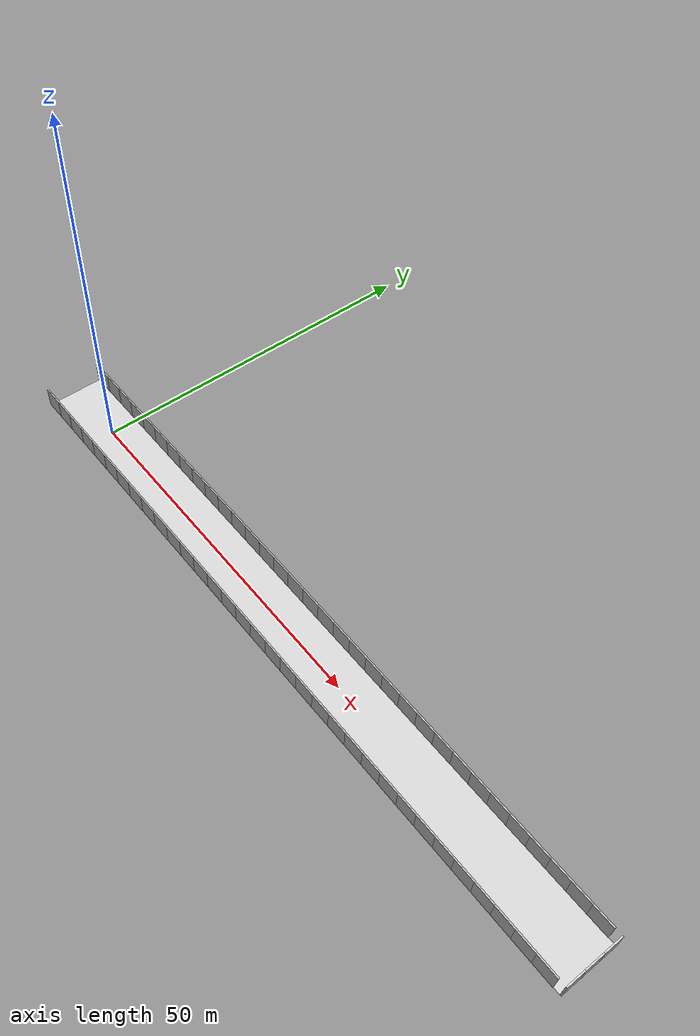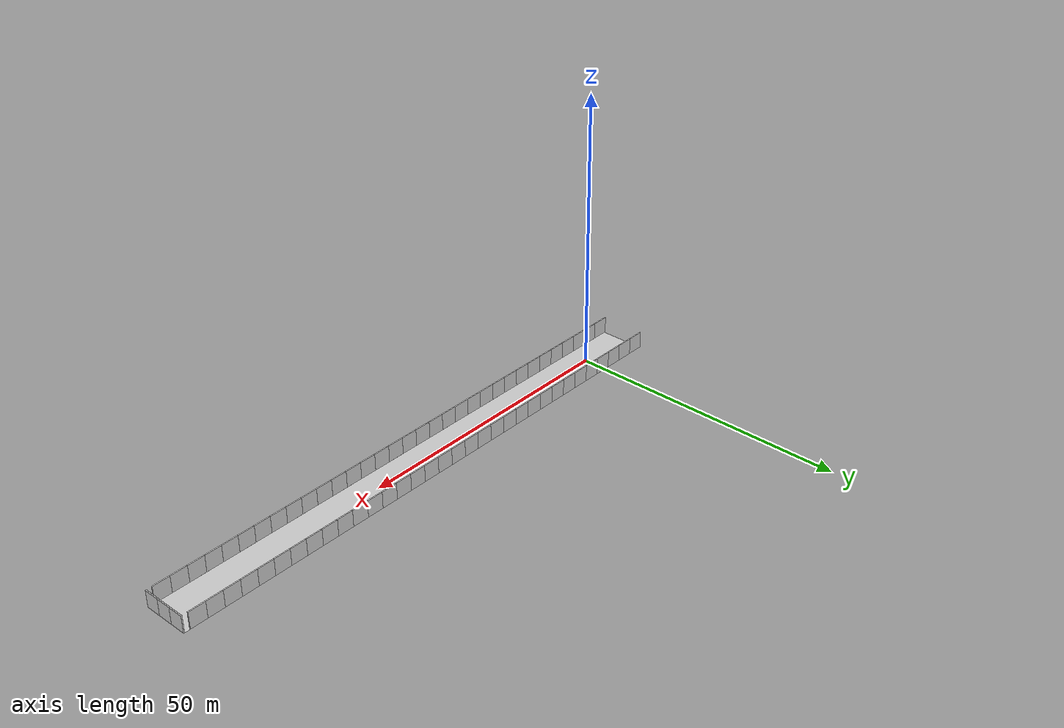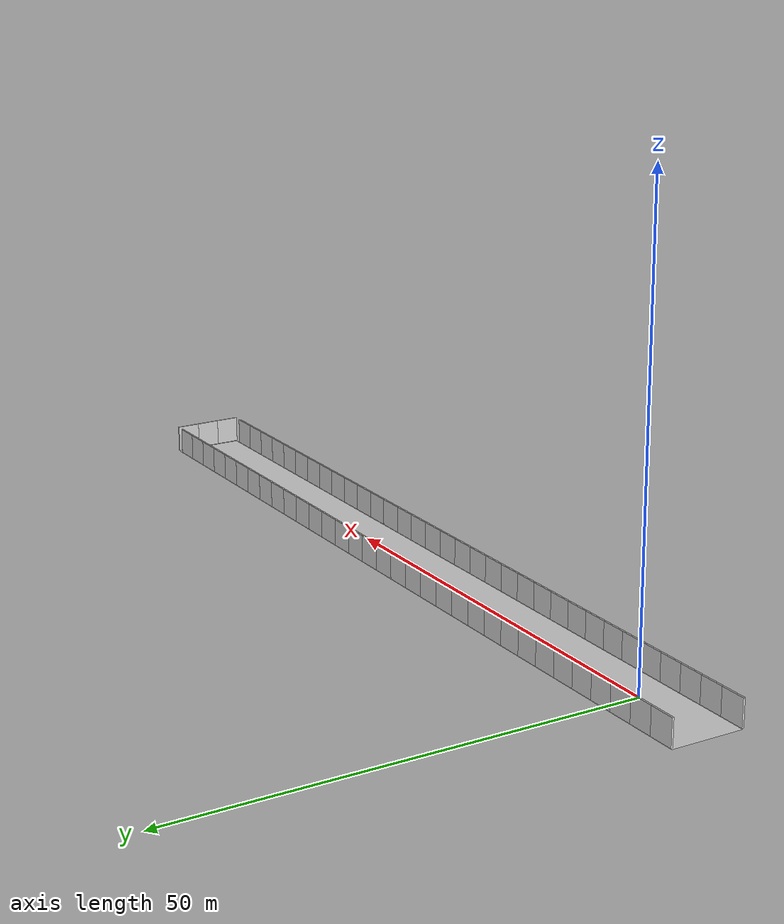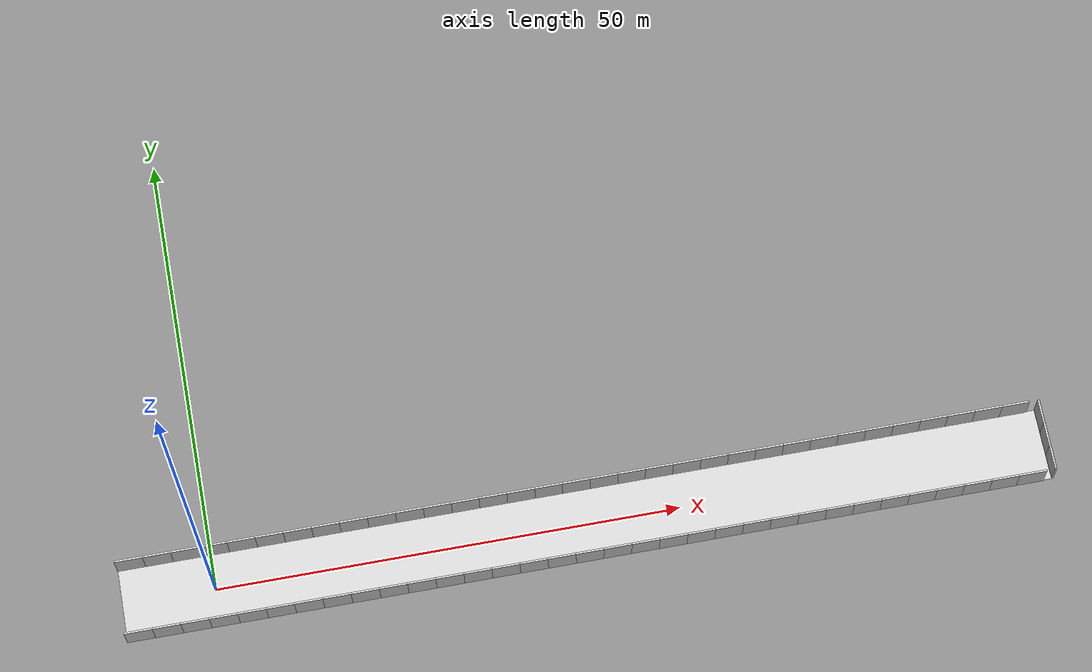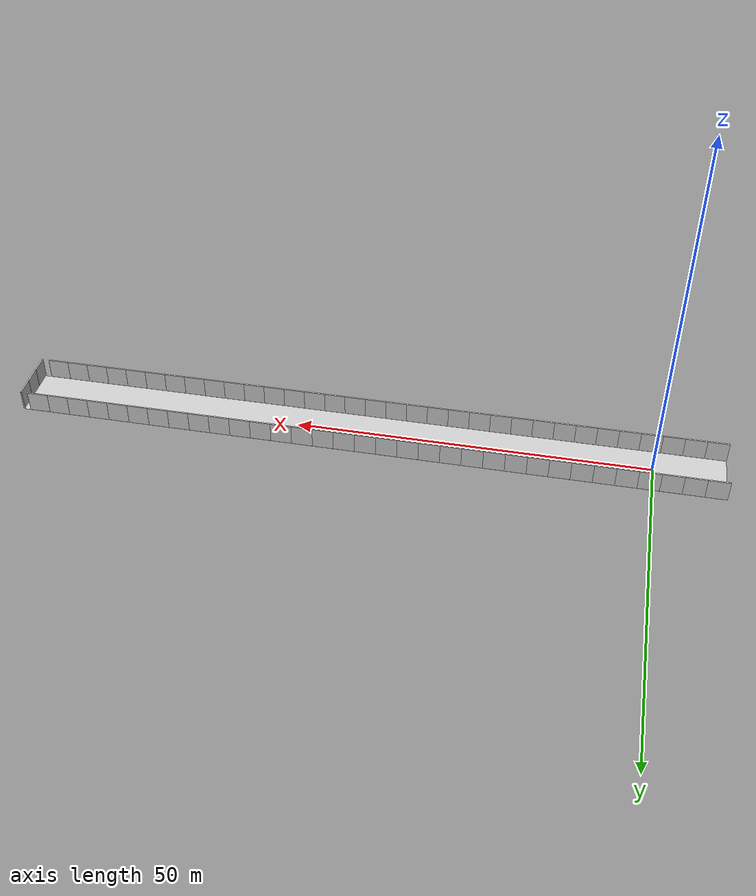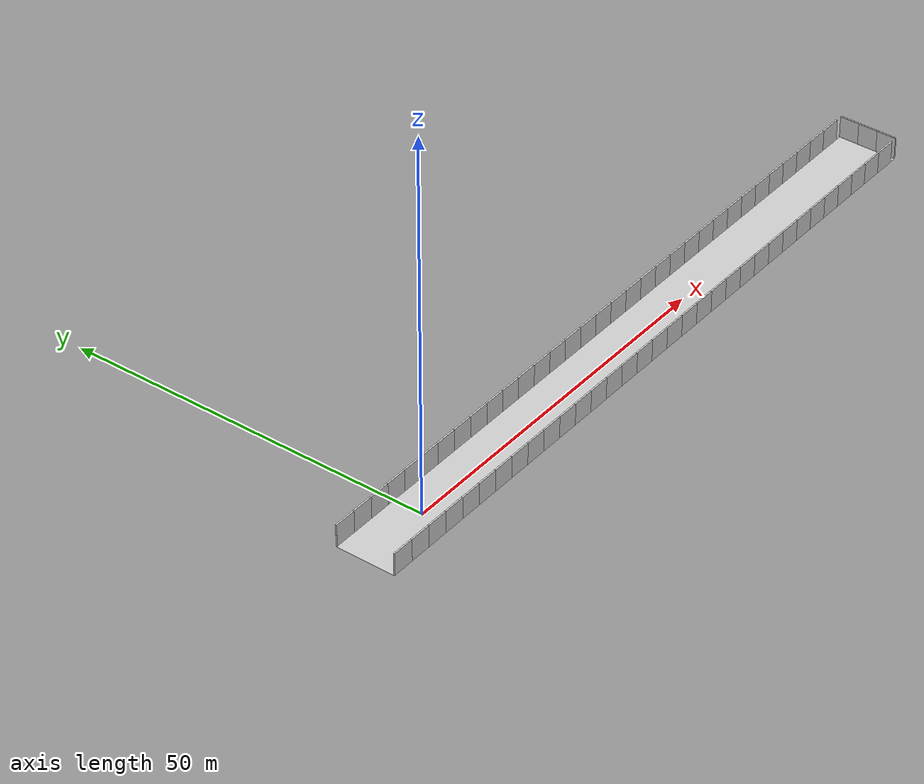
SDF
<?xml version="1.0" ?>
<sdf version="1.9">
  <world name="default">

    <physics name="1ms" type="ignore">
      <max_step_size>0.001</max_step_size>
      <real_time_factor>1.0</real_time_factor>
    </physics>

    <plugin filename="gz-sim-physics-system"
      name="gz::sim::systems::Physics">
    </plugin>

    <plugin
      filename="gz-sim-sensors-system"
      name="gz::sim::systems::Sensors">
      <render_engine>ogre2</render_engine>
    </plugin>

    <plugin filename="gz-sim-user-commands-system"
      name="gz::sim::systems::UserCommands">
    </plugin>
    <plugin filename="gz-sim-scene-broadcaster-system"
      name="gz::sim::systems::SceneBroadcaster">
    </plugin>

    <scene>
      <ambient>0.8 0.8 0.8 1</ambient>
      <background>0.4 0.4 0.4 1</background>
      <shadows>false</shadows>
    </scene>

    <light type="directional" name="sun">
      <cast_shadows>false</cast_shadows>
      <pose>0 0 20 0 0 0</pose>
      <diffuse>1 1 1 1</diffuse>
      <specular>0.5 0.5 0.5 1</specular>
      <direction>-0.5 0.1 -0.9</direction>
    </light>

    <!-- AXES -->

    <!-- ================= RUNWAY GROUND ================= -->
    <model name="runway_ground">
      <static>true</static>
      <pose>40 0 0 0 0 3.14159</pose>
      <link name="link">
        <collision name="collision">
          <geometry>
            <plane>
              <normal>0 0 1</normal>
              <size>100 8</size>
            </plane>
          </geometry>
        </collision>
        <visual name="visual">
          <cast_shadows>false</cast_shadows>
          <geometry>
            <plane>
              <normal>0 0 1</normal>
              <size>100 8</size>
            </plane>
          </geometry>
          <material>
            <ambient>0.8 0.8 0.8 1</ambient>
            <diffuse>0.8 0.8 0.8 1</diffuse>
            <specular>0.1 0.1 0.1 1</specular>
            <pbr>
              <metal>
                <albedo_map>file://materials/textures/runway.png</albedo_map>
                <roughness>0.8</roughness>
                <metalness>0</metalness>
              </metal>
            </pbr>
          </material>
        </visual>
      </link>
    </model>

    <!-- ================= WALLS (segmented for correct texture tiling) ================= -->

    <model name="wall_left_00">
      <static>true</static>
      <pose>-8.5 4 1.5 0 0 0</pose>
      <link name="link">
        <collision name="collision">
          <geometry><box><size>3.0 0.2 3.0</size></box></geometry>
        </collision>
        <visual name="visual">
          <cast_shadows>false</cast_shadows>
          <geometry><box><size>3.0 0.2 3.0</size></box></geometry>
          <material>
            <ambient>0.8 0.8 0.8 1</ambient>
            <diffuse>0.8 0.8 0.8 1</diffuse>
            <specular>0.1 0.1 0.1 1</specular>
            <pbr><metal>
              <albedo_map>file://materials/textures/plaster_bricks.jpg</albedo_map>
              <roughness>0.9</roughness>
              <metalness>0</metalness>
            </metal></pbr>
          </material>
        </visual>
      </link>
    </model>

    <model name="wall_left_01">
      <static>true</static>
      <pose>-5.5 4 1.5 0 0 0</pose>
      <link name="link">
        <collision name="collision">
          <geometry><box><size>3.0 0.2 3.0</size></box></geometry>
        </collision>
        <visual name="visual">
          <cast_shadows>false</cast_shadows>
          <geometry><box><size>3.0 0.2 3.0</size></box></geometry>
          <material>
            <ambient>0.8 0.8 0.8 1</ambient>
            <diffuse>0.8 0.8 0.8 1</diffuse>
            <specular>0.1 0.1 0.1 1</specular>
            <pbr><metal>
              <albedo_map>file://materials/textures/plaster_bricks.jpg</albedo_map>
              <roughness>0.9</roughness>
              <metalness>0</metalness>
            </metal></pbr>
          </material>
        </visual>
      </link>
    </model>

    <model name="wall_left_02">
      <static>true</static>
      <pose>-2.5 4 1.5 0 0 0</pose>
      <link name="link">
        <collision name="collision">
          <geometry><box><size>3.0 0.2 3.0</size></box></geometry>
        </collision>
        <visual name="visual">
          <cast_shadows>false</cast_shadows>
          <geometry><box><size>3.0 0.2 3.0</size></box></geometry>
          <material>
            <ambient>0.8 0.8 0.8 1</ambient>
            <diffuse>0.8 0.8 0.8 1</diffuse>
            <specular>0.1 0.1 0.1 1</specular>
            <pbr><metal>
              <albedo_map>file://materials/textures/plaster_bricks.jpg</albedo_map>
              <roughness>0.9</roughness>
              <metalness>0</metalness>
            </metal></pbr>
          </material>
        </visual>
      </link>
    </model>

    <model name="wall_left_03">
      <static>true</static>
      <pose>0.5 4 1.5 0 0 0</pose>
      <link name="link">
        <collision name="collision">
          <geometry><box><size>3.0 0.2 3.0</size></box></geometry>
        </collision>
        <visual name="visual">
          <cast_shadows>false</cast_shadows>
          <geometry><box><size>3.0 0.2 3.0</size></box></geometry>
          <material>
            <ambient>0.8 0.8 0.8 1</ambient>
            <diffuse>0.8 0.8 0.8 1</diffuse>
            <specular>0.1 0.1 0.1 1</specular>
            <pbr><metal>
              <albedo_map>file://materials/textures/plaster_bricks.jpg</albedo_map>
              <roughness>0.9</roughness>
              <metalness>0</metalness>
            </metal></pbr>
          </material>
        </visual>
      </link>
    </model>

    <model name="wall_left_04">
      <static>true</static>
      <pose>3.5 4 1.5 0 0 0</pose>
      <link name="link">
        <collision name="collision">
          <geometry><box><size>3.0 0.2 3.0</size></box></geometry>
        </collision>
        <visual name="visual">
          <cast_shadows>false</cast_shadows>
          <geometry><box><size>3.0 0.2 3.0</size></box></geometry>
          <material>
            <ambient>0.8 0.8 0.8 1</ambient>
            <diffuse>0.8 0.8 0.8 1</diffuse>
            <specular>0.1 0.1 0.1 1</specular>
            <pbr><metal>
              <albedo_map>file://materials/textures/plaster_bricks.jpg</albedo_map>
              <roughness>0.9</roughness>
              <metalness>0</metalness>
            </metal></pbr>
          </material>
        </visual>
      </link>
    </model>

    <model name="wall_left_05">
      <static>true</static>
      <pose>6.5 4 1.5 0 0 0</pose>
      <link name="link">
        <collision name="collision">
          <geometry><box><size>3.0 0.2 3.0</size></box></geometry>
        </collision>
        <visual name="visual">
          <cast_shadows>false</cast_shadows>
          <geometry><box><size>3.0 0.2 3.0</size></box></geometry>
          <material>
            <ambient>0.8 0.8 0.8 1</ambient>
            <diffuse>0.8 0.8 0.8 1</diffuse>
            <specular>0.1 0.1 0.1 1</specular>
            <pbr><metal>
              <albedo_map>file://materials/textures/plaster_bricks.jpg</albedo_map>
              <roughness>0.9</roughness>
              <metalness>0</metalness>
            </metal></pbr>
          </material>
        </visual>
      </link>
    </model>

    <model name="wall_left_06">
      <static>true</static>
      <pose>9.5 4 1.5 0 0 0</pose>
      <link name="link">
        <collision name="collision">
          <geometry><box><size>3.0 0.2 3.0</size></box></geometry>
        </collision>
        <visual name="visual">
          <cast_shadows>false</cast_shadows>
          <geometry><box><size>3.0 0.2 3.0</size></box></geometry>
          <material>
            <ambient>0.8 0.8 0.8 1</ambient>
            <diffuse>0.8 0.8 0.8 1</diffuse>
            <specular>0.1 0.1 0.1 1</specular>
            <pbr><metal>
              <albedo_map>file://materials/textures/plaster_bricks.jpg</albedo_map>
              <roughness>0.9</roughness>
              <metalness>0</metalness>
            </metal></pbr>
          </material>
        </visual>
      </link>
    </model>

    <model name="wall_left_07">
      <static>true</static>
      <pose>12.5 4 1.5 0 0 0</pose>
      <link name="link">
        <collision name="collision">
          <geometry><box><size>3.0 0.2 3.0</size></box></geometry>
        </collision>
        <visual name="visual">
          <cast_shadows>false</cast_shadows>
          <geometry><box><size>3.0 0.2 3.0</size></box></geometry>
          <material>
            <ambient>0.8 0.8 0.8 1</ambient>
            <diffuse>0.8 0.8 0.8 1</diffuse>
            <specular>0.1 0.1 0.1 1</specular>
            <pbr><metal>
              <albedo_map>file://materials/textures/plaster_bricks.jpg</albedo_map>
              <roughness>0.9</roughness>
              <metalness>0</metalness>
            </metal></pbr>
          </material>
        </visual>
      </link>
    </model>

    <model name="wall_left_08">
      <static>true</static>
      <pose>15.5 4 1.5 0 0 0</pose>
      <link name="link">
        <collision name="collision">
          <geometry><box><size>3.0 0.2 3.0</size></box></geometry>
        </collision>
        <visual name="visual">
          <cast_shadows>false</cast_shadows>
          <geometry><box><size>3.0 0.2 3.0</size></box></geometry>
          <material>
            <ambient>0.8 0.8 0.8 1</ambient>
            <diffuse>0.8 0.8 0.8 1</diffuse>
            <specular>0.1 0.1 0.1 1</specular>
            <pbr><metal>
              <albedo_map>file://materials/textures/plaster_bricks.jpg</albedo_map>
              <roughness>0.9</roughness>
              <metalness>0</metalness>
            </metal></pbr>
          </material>
        </visual>
      </link>
    </model>

    <model name="wall_left_09">
      <static>true</static>
      <pose>18.5 4 1.5 0 0 0</pose>
      <link name="link">
        <collision name="collision">
          <geometry><box><size>3.0 0.2 3.0</size></box></geometry>
        </collision>
        <visual name="visual">
          <cast_shadows>false</cast_shadows>
          <geometry><box><size>3.0 0.2 3.0</size></box></geometry>
          <material>
            <ambient>0.8 0.8 0.8 1</ambient>
            <diffuse>0.8 0.8 0.8 1</diffuse>
            <specular>0.1 0.1 0.1 1</specular>
            <pbr><metal>
              <albedo_map>file://materials/textures/plaster_bricks.jpg</albedo_map>
              <roughness>0.9</roughness>
              <metalness>0</metalness>
            </metal></pbr>
          </material>
        </visual>
      </link>
    </model>

    <model name="wall_left_10">
      <static>true</static>
      <pose>21.5 4 1.5 0 0 0</pose>
      <link name="link">
        <collision name="collision">
          <geometry><box><size>3.0 0.2 3.0</size></box></geometry>
        </collision>
        <visual name="visual">
          <cast_shadows>false</cast_shadows>
          <geometry><box><size>3.0 0.2 3.0</size></box></geometry>
          <material>
            <ambient>0.8 0.8 0.8 1</ambient>
            <diffuse>0.8 0.8 0.8 1</diffuse>
            <specular>0.1 0.1 0.1 1</specular>
            <pbr><metal>
              <albedo_map>file://materials/textures/plaster_bricks.jpg</albedo_map>
              <roughness>0.9</roughness>
              <metalness>0</metalness>
            </metal></pbr>
          </material>
        </visual>
      </link>
    </model>

    <model name="wall_left_11">
      <static>true</static>
      <pose>24.5 4 1.5 0 0 0</pose>
      <link name="link">
        <collision name="collision">
          <geometry><box><size>3.0 0.2 3.0</size></box></geometry>
        </collision>
        <visual name="visual">
          <cast_shadows>false</cast_shadows>
          <geometry><box><size>3.0 0.2 3.0</size></box></geometry>
          <material>
            <ambient>0.8 0.8 0.8 1</ambient>
            <diffuse>0.8 0.8 0.8 1</diffuse>
            <specular>0.1 0.1 0.1 1</specular>
            <pbr><metal>
              <albedo_map>file://materials/textures/plaster_bricks.jpg</albedo_map>
              <roughness>0.9</roughness>
              <metalness>0</metalness>
            </metal></pbr>
          </material>
        </visual>
      </link>
    </model>

    <model name="wall_left_12">
      <static>true</static>
      <pose>27.5 4 1.5 0 0 0</pose>
      <link name="link">
        <collision name="collision">
          <geometry><box><size>3.0 0.2 3.0</size></box></geometry>
        </collision>
        <visual name="visual">
          <cast_shadows>false</cast_shadows>
          <geometry><box><size>3.0 0.2 3.0</size></box></geometry>
          <material>
            <ambient>0.8 0.8 0.8 1</ambient>
            <diffuse>0.8 0.8 0.8 1</diffuse>
            <specular>0.1 0.1 0.1 1</specular>
            <pbr><metal>
              <albedo_map>file://materials/textures/plaster_bricks.jpg</albedo_map>
              <roughness>0.9</roughness>
              <metalness>0</metalness>
            </metal></pbr>
          </material>
        </visual>
      </link>
    </model>

    <model name="wall_left_13">
      <static>true</static>
      <pose>30.5 4 1.5 0 0 0</pose>
      <link name="link">
        <collision name="collision">
          <geometry><box><size>3.0 0.2 3.0</size></box></geometry>
        </collision>
        <visual name="visual">
          <cast_shadows>false</cast_shadows>
          <geometry><box><size>3.0 0.2 3.0</size></box></geometry>
          <material>
            <ambient>0.8 0.8 0.8 1</ambient>
            <diffuse>0.8 0.8 0.8 1</diffuse>
            <specular>0.1 0.1 0.1 1</specular>
            <pbr><metal>
              <albedo_map>file://materials/textures/plaster_bricks.jpg</albedo_map>
              <roughness>0.9</roughness>
              <metalness>0</metalness>
            </metal></pbr>
          </material>
        </visual>
      </link>
    </model>

    <model name="wall_left_14">
      <static>true</static>
      <pose>33.5 4 1.5 0 0 0</pose>
      <link name="link">
        <collision name="collision">
          <geometry><box><size>3.0 0.2 3.0</size></box></geometry>
        </collision>
        <visual name="visual">
          <cast_shadows>false</cast_shadows>
          <geometry><box><size>3.0 0.2 3.0</size></box></geometry>
          <material>
            <ambient>0.8 0.8 0.8 1</ambient>
            <diffuse>0.8 0.8 0.8 1</diffuse>
            <specular>0.1 0.1 0.1 1</specular>
            <pbr><metal>
              <albedo_map>file://materials/textures/plaster_bricks.jpg</albedo_map>
              <roughness>0.9</roughness>
              <metalness>0</metalness>
            </metal></pbr>
          </material>
        </visual>
      </link>
    </model>

    <model name="wall_left_15">
      <static>true</static>
      <pose>36.5 4 1.5 0 0 0</pose>
      <link name="link">
        <collision name="collision">
          <geometry><box><size>3.0 0.2 3.0</size></box></geometry>
        </collision>
        <visual name="visual">
          <cast_shadows>false</cast_shadows>
          <geometry><box><size>3.0 0.2 3.0</size></box></geometry>
          <material>
            <ambient>0.8 0.8 0.8 1</ambient>
            <diffuse>0.8 0.8 0.8 1</diffuse>
            <specular>0.1 0.1 0.1 1</specular>
            <pbr><metal>
              <albedo_map>file://materials/textures/plaster_bricks.jpg</albedo_map>
              <roughness>0.9</roughness>
              <metalness>0</metalness>
            </metal></pbr>
          </material>
        </visual>
      </link>
    </model>

    <model name="wall_left_16">
      <static>true</static>
      <pose>39.5 4 1.5 0 0 0</pose>
      <link name="link">
        <collision name="collision">
          <geometry><box><size>3.0 0.2 3.0</size></box></geometry>
        </collision>
        <visual name="visual">
          <cast_shadows>false</cast_shadows>
          <geometry><box><size>3.0 0.2 3.0</size></box></geometry>
          <material>
            <ambient>0.8 0.8 0.8 1</ambient>
            <diffuse>0.8 0.8 0.8 1</diffuse>
            <specular>0.1 0.1 0.1 1</specular>
            <pbr><metal>
              <albedo_map>file://materials/textures/plaster_bricks.jpg</albedo_map>
              <roughness>0.9</roughness>
              <metalness>0</metalness>
            </metal></pbr>
          </material>
        </visual>
      </link>
    </model>

    <model name="wall_left_17">
      <static>true</static>
      <pose>42.5 4 1.5 0 0 0</pose>
      <link name="link">
        <collision name="collision">
          <geometry><box><size>3.0 0.2 3.0</size></box></geometry>
        </collision>
        <visual name="visual">
          <cast_shadows>false</cast_shadows>
          <geometry><box><size>3.0 0.2 3.0</size></box></geometry>
          <material>
            <ambient>0.8 0.8 0.8 1</ambient>
            <diffuse>0.8 0.8 0.8 1</diffuse>
            <specular>0.1 0.1 0.1 1</specular>
            <pbr><metal>
              <albedo_map>file://materials/textures/plaster_bricks.jpg</albedo_map>
              <roughness>0.9</roughness>
              <metalness>0</metalness>
            </metal></pbr>
          </material>
        </visual>
      </link>
    </model>

    <model name="wall_left_18">
      <static>true</static>
      <pose>45.5 4 1.5 0 0 0</pose>
      <link name="link">
        <collision name="collision">
          <geometry><box><size>3.0 0.2 3.0</size></box></geometry>
        </collision>
        <visual name="visual">
          <cast_shadows>false</cast_shadows>
          <geometry><box><size>3.0 0.2 3.0</size></box></geometry>
          <material>
            <ambient>0.8 0.8 0.8 1</ambient>
            <diffuse>0.8 0.8 0.8 1</diffuse>
            <specular>0.1 0.1 0.1 1</specular>
            <pbr><metal>
              <albedo_map>file://materials/textures/plaster_bricks.jpg</albedo_map>
              <roughness>0.9</roughness>
              <metalness>0</metalness>
            </metal></pbr>
          </material>
        </visual>
      </link>
    </model>

    <model name="wall_left_19">
      <static>true</static>
      <pose>48.5 4 1.5 0 0 0</pose>
      <link name="link">
        <collision name="collision">
          <geometry><box><size>3.0 0.2 3.0</size></box></geometry>
        </collision>
        <visual name="visual">
          <cast_shadows>false</cast_shadows>
          <geometry><box><size>3.0 0.2 3.0</size></box></geometry>
          <material>
            <ambient>0.8 0.8 0.8 1</ambient>
            <diffuse>0.8 0.8 0.8 1</diffuse>
            <specular>0.1 0.1 0.1 1</specular>
            <pbr><metal>
              <albedo_map>file://materials/textures/plaster_bricks.jpg</albedo_map>
              <roughness>0.9</roughness>
              <metalness>0</metalness>
            </metal></pbr>
          </material>
        </visual>
      </link>
    </model>

    <model name="wall_left_20">
      <static>true</static>
      <pose>51.5 4 1.5 0 0 0</pose>
      <link name="link">
        <collision name="collision">
          <geometry><box><size>3.0 0.2 3.0</size></box></geometry>
        </collision>
        <visual name="visual">
          <cast_shadows>false</cast_shadows>
          <geometry><box><size>3.0 0.2 3.0</size></box></geometry>
          <material>
            <ambient>0.8 0.8 0.8 1</ambient>
            <diffuse>0.8 0.8 0.8 1</diffuse>
            <specular>0.1 0.1 0.1 1</specular>
            <pbr><metal>
              <albedo_map>file://materials/textures/plaster_bricks.jpg</albedo_map>
              <roughness>0.9</roughness>
              <metalness>0</metalness>
            </metal></pbr>
          </material>
        </visual>
      </link>
    </model>

    <model name="wall_left_21">
      <static>true</static>
      <pose>54.5 4 1.5 0 0 0</pose>
      <link name="link">
        <collision name="collision">
          <geometry><box><size>3.0 0.2 3.0</size></box></geometry>
        </collision>
        <visual name="visual">
          <cast_shadows>false</cast_shadows>
          <geometry><box><size>3.0 0.2 3.0</size></box></geometry>
          <material>
            <ambient>0.8 0.8 0.8 1</ambient>
            <diffuse>0.8 0.8 0.8 1</diffuse>
            <specular>0.1 0.1 0.1 1</specular>
            <pbr><metal>
              <albedo_map>file://materials/textures/plaster_bricks.jpg</albedo_map>
              <roughness>0.9</roughness>
              <metalness>0</metalness>
            </metal></pbr>
          </material>
        </visual>
      </link>
    </model>

    <model name="wall_left_22">
      <static>true</static>
      <pose>57.5 4 1.5 0 0 0</pose>
      <link name="link">
        <collision name="collision">
          <geometry><box><size>3.0 0.2 3.0</size></box></geometry>
        </collision>
        <visual name="visual">
          <cast_shadows>false</cast_shadows>
          <geometry><box><size>3.0 0.2 3.0</size></box></geometry>
          <material>
            <ambient>0.8 0.8 0.8 1</ambient>
            <diffuse>0.8 0.8 0.8 1</diffuse>
            <specular>0.1 0.1 0.1 1</specular>
            <pbr><metal>
              <albedo_map>file://materials/textures/plaster_bricks.jpg</albedo_map>
              <roughness>0.9</roughness>
              <metalness>0</metalness>
            </metal></pbr>
          </material>
        </visual>
      </link>
    </model>

    <model name="wall_left_23">
      <static>true</static>
      <pose>60.5 4 1.5 0 0 0</pose>
      <link name="link">
        <collision name="collision">
          <geometry><box><size>3.0 0.2 3.0</size></box></geometry>
        </collision>
        <visual name="visual">
          <cast_shadows>false</cast_shadows>
          <geometry><box><size>3.0 0.2 3.0</size></box></geometry>
          <material>
            <ambient>0.8 0.8 0.8 1</ambient>
            <diffuse>0.8 0.8 0.8 1</diffuse>
            <specular>0.1 0.1 0.1 1</specular>
            <pbr><metal>
              <albedo_map>file://materials/textures/plaster_bricks.jpg</albedo_map>
              <roughness>0.9</roughness>
              <metalness>0</metalness>
            </metal></pbr>
          </material>
        </visual>
      </link>
    </model>

    <model name="wall_left_24">
      <static>true</static>
      <pose>63.5 4 1.5 0 0 0</pose>
      <link name="link">
        <collision name="collision">
          <geometry><box><size>3.0 0.2 3.0</size></box></geometry>
        </collision>
        <visual name="visual">
          <cast_shadows>false</cast_shadows>
          <geometry><box><size>3.0 0.2 3.0</size></box></geometry>
          <material>
            <ambient>0.8 0.8 0.8 1</ambient>
            <diffuse>0.8 0.8 0.8 1</diffuse>
            <specular>0.1 0.1 0.1 1</specular>
            <pbr><metal>
              <albedo_map>file://materials/textures/plaster_bricks.jpg</albedo_map>
              <roughness>0.9</roughness>
              <metalness>0</metalness>
            </metal></pbr>
          </material>
        </visual>
      </link>
    </model>

    <model name="wall_left_25">
      <static>true</static>
      <pose>66.5 4 1.5 0 0 0</pose>
      <link name="link">
        <collision name="collision">
          <geometry><box><size>3.0 0.2 3.0</size></box></geometry>
        </collision>
        <visual name="visual">
          <cast_shadows>false</cast_shadows>
          <geometry><box><size>3.0 0.2 3.0</size></box></geometry>
          <material>
            <ambient>0.8 0.8 0.8 1</ambient>
            <diffuse>0.8 0.8 0.8 1</diffuse>
            <specular>0.1 0.1 0.1 1</specular>
            <pbr><metal>
              <albedo_map>file://materials/textures/plaster_bricks.jpg</albedo_map>
              <roughness>0.9</roughness>
              <metalness>0</metalness>
            </metal></pbr>
          </material>
        </visual>
      </link>
    </model>

    <model name="wall_left_26">
      <static>true</static>
      <pose>69.5 4 1.5 0 0 0</pose>
      <link name="link">
        <collision name="collision">
          <geometry><box><size>3.0 0.2 3.0</size></box></geometry>
        </collision>
        <visual name="visual">
          <cast_shadows>false</cast_shadows>
          <geometry><box><size>3.0 0.2 3.0</size></box></geometry>
          <material>
            <ambient>0.8 0.8 0.8 1</ambient>
            <diffuse>0.8 0.8 0.8 1</diffuse>
            <specular>0.1 0.1 0.1 1</specular>
            <pbr><metal>
              <albedo_map>file://materials/textures/plaster_bricks.jpg</albedo_map>
              <roughness>0.9</roughness>
              <metalness>0</metalness>
            </metal></pbr>
          </material>
        </visual>
      </link>
    </model>

    <model name="wall_left_27">
      <static>true</static>
      <pose>72.5 4 1.5 0 0 0</pose>
      <link name="link">
        <collision name="collision">
          <geometry><box><size>3.0 0.2 3.0</size></box></geometry>
        </collision>
        <visual name="visual">
          <cast_shadows>false</cast_shadows>
          <geometry><box><size>3.0 0.2 3.0</size></box></geometry>
          <material>
            <ambient>0.8 0.8 0.8 1</ambient>
            <diffuse>0.8 0.8 0.8 1</diffuse>
            <specular>0.1 0.1 0.1 1</specular>
            <pbr><metal>
              <albedo_map>file://materials/textures/plaster_bricks.jpg</albedo_map>
              <roughness>0.9</roughness>
              <metalness>0</metalness>
            </metal></pbr>
          </material>
        </visual>
      </link>
    </model>

    <model name="wall_left_28">
      <static>true</static>
      <pose>75.5 4 1.5 0 0 0</pose>
      <link name="link">
        <collision name="collision">
          <geometry><box><size>3.0 0.2 3.0</size></box></geometry>
        </collision>
        <visual name="visual">
          <cast_shadows>false</cast_shadows>
          <geometry><box><size>3.0 0.2 3.0</size></box></geometry>
          <material>
            <ambient>0.8 0.8 0.8 1</ambient>
            <diffuse>0.8 0.8 0.8 1</diffuse>
            <specular>0.1 0.1 0.1 1</specular>
            <pbr><metal>
              <albedo_map>file://materials/textures/plaster_bricks.jpg</albedo_map>
              <roughness>0.9</roughness>
              <metalness>0</metalness>
            </metal></pbr>
          </material>
        </visual>
      </link>
    </model>

    <model name="wall_left_29">
      <static>true</static>
      <pose>78.5 4 1.5 0 0 0</pose>
      <link name="link">
        <collision name="collision">
          <geometry><box><size>3.0 0.2 3.0</size></box></geometry>
        </collision>
        <visual name="visual">
          <cast_shadows>false</cast_shadows>
          <geometry><box><size>3.0 0.2 3.0</size></box></geometry>
          <material>
            <ambient>0.8 0.8 0.8 1</ambient>
            <diffuse>0.8 0.8 0.8 1</diffuse>
            <specular>0.1 0.1 0.1 1</specular>
            <pbr><metal>
              <albedo_map>file://materials/textures/plaster_bricks.jpg</albedo_map>
              <roughness>0.9</roughness>
              <metalness>0</metalness>
            </metal></pbr>
          </material>
        </visual>
      </link>
    </model>

    <model name="wall_left_30">
      <static>true</static>
      <pose>81.5 4 1.5 0 0 0</pose>
      <link name="link">
        <collision name="collision">
          <geometry><box><size>3.0 0.2 3.0</size></box></geometry>
        </collision>
        <visual name="visual">
          <cast_shadows>false</cast_shadows>
          <geometry><box><size>3.0 0.2 3.0</size></box></geometry>
          <material>
            <ambient>0.8 0.8 0.8 1</ambient>
            <diffuse>0.8 0.8 0.8 1</diffuse>
            <specular>0.1 0.1 0.1 1</specular>
            <pbr><metal>
              <albedo_map>file://materials/textures/plaster_bricks.jpg</albedo_map>
              <roughness>0.9</roughness>
              <metalness>0</metalness>
            </metal></pbr>
          </material>
        </visual>
      </link>
    </model>

    <model name="wall_left_31">
      <static>true</static>
      <pose>84.5 4 1.5 0 0 0</pose>
      <link name="link">
        <collision name="collision">
          <geometry><box><size>3.0 0.2 3.0</size></box></geometry>
        </collision>
        <visual name="visual">
          <cast_shadows>false</cast_shadows>
          <geometry><box><size>3.0 0.2 3.0</size></box></geometry>
          <material>
            <ambient>0.8 0.8 0.8 1</ambient>
            <diffuse>0.8 0.8 0.8 1</diffuse>
            <specular>0.1 0.1 0.1 1</specular>
            <pbr><metal>
              <albedo_map>file://materials/textures/plaster_bricks.jpg</albedo_map>
              <roughness>0.9</roughness>
              <metalness>0</metalness>
            </metal></pbr>
          </material>
        </visual>
      </link>
    </model>

    <model name="wall_left_32">
      <static>true</static>
      <pose>87.5 4 1.5 0 0 0</pose>
      <link name="link">
        <collision name="collision">
          <geometry><box><size>3.0 0.2 3.0</size></box></geometry>
        </collision>
        <visual name="visual">
          <cast_shadows>false</cast_shadows>
          <geometry><box><size>3.0 0.2 3.0</size></box></geometry>
          <material>
            <ambient>0.8 0.8 0.8 1</ambient>
            <diffuse>0.8 0.8 0.8 1</diffuse>
            <specular>0.1 0.1 0.1 1</specular>
            <pbr><metal>
              <albedo_map>file://materials/textures/plaster_bricks.jpg</albedo_map>
              <roughness>0.9</roughness>
              <metalness>0</metalness>
            </metal></pbr>
          </material>
        </visual>
      </link>
    </model>

    <model name="wall_right_00">
      <static>true</static>
      <pose>-8.5 -4 1.5 0 0 0</pose>
      <link name="link">
        <collision name="collision">
          <geometry><box><size>3.0 0.2 3.0</size></box></geometry>
        </collision>
        <visual name="visual">
          <cast_shadows>false</cast_shadows>
          <geometry><box><size>3.0 0.2 3.0</size></box></geometry>
          <material>
            <ambient>0.8 0.8 0.8 1</ambient>
            <diffuse>0.8 0.8 0.8 1</diffuse>
            <specular>0.1 0.1 0.1 1</specular>
            <pbr><metal>
              <albedo_map>file://materials/textures/plaster_bricks.jpg</albedo_map>
              <roughness>0.9</roughness>
              <metalness>0</metalness>
            </metal></pbr>
          </material>
        </visual>
      </link>
    </model>

    <model name="wall_right_01">
      <static>true</static>
      <pose>-5.5 -4 1.5 0 0 0</pose>
      <link name="link">
        <collision name="collision">
          <geometry><box><size>3.0 0.2 3.0</size></box></geometry>
        </collision>
        <visual name="visual">
          <cast_shadows>false</cast_shadows>
          <geometry><box><size>3.0 0.2 3.0</size></box></geometry>
          <material>
            <ambient>0.8 0.8 0.8 1</ambient>
            <diffuse>0.8 0.8 0.8 1</diffuse>
            <specular>0.1 0.1 0.1 1</specular>
            <pbr><metal>
              <albedo_map>file://materials/textures/plaster_bricks.jpg</albedo_map>
              <roughness>0.9</roughness>
              <metalness>0</metalness>
            </metal></pbr>
          </material>
        </visual>
      </link>
    </model>

    <model name="wall_right_02">
      <static>true</static>
      <pose>-2.5 -4 1.5 0 0 0</pose>
      <link name="link">
        <collision name="collision">
          <geometry><box><size>3.0 0.2 3.0</size></box></geometry>
        </collision>
        <visual name="visual">
          <cast_shadows>false</cast_shadows>
          <geometry><box><size>3.0 0.2 3.0</size></box></geometry>
          <material>
            <ambient>0.8 0.8 0.8 1</ambient>
            <diffuse>0.8 0.8 0.8 1</diffuse>
            <specular>0.1 0.1 0.1 1</specular>
            <pbr><metal>
              <albedo_map>file://materials/textures/plaster_bricks.jpg</albedo_map>
              <roughness>0.9</roughness>
              <metalness>0</metalness>
            </metal></pbr>
          </material>
        </visual>
      </link>
    </model>

    <model name="wall_right_03">
      <static>true</static>
      <pose>0.5 -4 1.5 0 0 0</pose>
      <link name="link">
        <collision name="collision">
          <geometry><box><size>3.0 0.2 3.0</size></box></geometry>
        </collision>
        <visual name="visual">
          <cast_shadows>false</cast_shadows>
          <geometry><box><size>3.0 0.2 3.0</size></box></geometry>
          <material>
            <ambient>0.8 0.8 0.8 1</ambient>
            <diffuse>0.8 0.8 0.8 1</diffuse>
            <specular>0.1 0.1 0.1 1</specular>
            <pbr><metal>
              <albedo_map>file://materials/textures/plaster_bricks.jpg</albedo_map>
              <roughness>0.9</roughness>
              <metalness>0</metalness>
            </metal></pbr>
          </material>
        </visual>
      </link>
    </model>

    <model name="wall_right_04">
      <static>true</static>
      <pose>3.5 -4 1.5 0 0 0</pose>
      <link name="link">
        <collision name="collision">
          <geometry><box><size>3.0 0.2 3.0</size></box></geometry>
        </collision>
        <visual name="visual">
          <cast_shadows>false</cast_shadows>
          <geometry><box><size>3.0 0.2 3.0</size></box></geometry>
          <material>
            <ambient>0.8 0.8 0.8 1</ambient>
            <diffuse>0.8 0.8 0.8 1</diffuse>
            <specular>0.1 0.1 0.1 1</specular>
            <pbr><metal>
              <albedo_map>file://materials/textures/plaster_bricks.jpg</albedo_map>
              <roughness>0.9</roughness>
              <metalness>0</metalness>
            </metal></pbr>
          </material>
        </visual>
      </link>
    </model>

    <model name="wall_right_05">
      <static>true</static>
      <pose>6.5 -4 1.5 0 0 0</pose>
      <link name="link">
        <collision name="collision">
          <geometry><box><size>3.0 0.2 3.0</size></box></geometry>
        </collision>
        <visual name="visual">
          <cast_shadows>false</cast_shadows>
          <geometry><box><size>3.0 0.2 3.0</size></box></geometry>
          <material>
            <ambient>0.8 0.8 0.8 1</ambient>
            <diffuse>0.8 0.8 0.8 1</diffuse>
            <specular>0.1 0.1 0.1 1</specular>
            <pbr><metal>
              <albedo_map>file://materials/textures/plaster_bricks.jpg</albedo_map>
              <roughness>0.9</roughness>
              <metalness>0</metalness>
            </metal></pbr>
          </material>
        </visual>
      </link>
    </model>

    <model name="wall_right_06">
      <static>true</static>
      <pose>9.5 -4 1.5 0 0 0</pose>
      <link name="link">
        <collision name="collision">
          <geometry><box><size>3.0 0.2 3.0</size></box></geometry>
        </collision>
        <visual name="visual">
          <cast_shadows>false</cast_shadows>
          <geometry><box><size>3.0 0.2 3.0</size></box></geometry>
          <material>
            <ambient>0.8 0.8 0.8 1</ambient>
            <diffuse>0.8 0.8 0.8 1</diffuse>
            <specular>0.1 0.1 0.1 1</specular>
            <pbr><metal>
              <albedo_map>file://materials/textures/plaster_bricks.jpg</albedo_map>
              <roughness>0.9</roughness>
              <metalness>0</metalness>
            </metal></pbr>
          </material>
        </visual>
      </link>
    </model>

    <model name="wall_right_07">
      <static>true</static>
      <pose>12.5 -4 1.5 0 0 0</pose>
      <link name="link">
        <collision name="collision">
          <geometry><box><size>3.0 0.2 3.0</size></box></geometry>
        </collision>
        <visual name="visual">
          <cast_shadows>false</cast_shadows>
          <geometry><box><size>3.0 0.2 3.0</size></box></geometry>
          <material>
            <ambient>0.8 0.8 0.8 1</ambient>
            <diffuse>0.8 0.8 0.8 1</diffuse>
            <specular>0.1 0.1 0.1 1</specular>
            <pbr><metal>
              <albedo_map>file://materials/textures/plaster_bricks.jpg</albedo_map>
              <roughness>0.9</roughness>
              <metalness>0</metalness>
            </metal></pbr>
          </material>
        </visual>
      </link>
    </model>

    <model name="wall_right_08">
      <static>true</static>
      <pose>15.5 -4 1.5 0 0 0</pose>
      <link name="link">
        <collision name="collision">
          <geometry><box><size>3.0 0.2 3.0</size></box></geometry>
        </collision>
        <visual name="visual">
          <cast_shadows>false</cast_shadows>
          <geometry><box><size>3.0 0.2 3.0</size></box></geometry>
          <material>
            <ambient>0.8 0.8 0.8 1</ambient>
            <diffuse>0.8 0.8 0.8 1</diffuse>
            <specular>0.1 0.1 0.1 1</specular>
            <pbr><metal>
              <albedo_map>file://materials/textures/plaster_bricks.jpg</albedo_map>
              <roughness>0.9</roughness>
              <metalness>0</metalness>
            </metal></pbr>
          </material>
        </visual>
      </link>
    </model>

    <model name="wall_right_09">
      <static>true</static>
      <pose>18.5 -4 1.5 0 0 0</pose>
      <link name="link">
        <collision name="collision">
          <geometry><box><size>3.0 0.2 3.0</size></box></geometry>
        </collision>
        <visual name="visual">
          <cast_shadows>false</cast_shadows>
          <geometry><box><size>3.0 0.2 3.0</size></box></geometry>
          <material>
            <ambient>0.8 0.8 0.8 1</ambient>
            <diffuse>0.8 0.8 0.8 1</diffuse>
            <specular>0.1 0.1 0.1 1</specular>
            <pbr><metal>
              <albedo_map>file://materials/textures/plaster_bricks.jpg</albedo_map>
              <roughness>0.9</roughness>
              <metalness>0</metalness>
            </metal></pbr>
          </material>
        </visual>
      </link>
    </model>

    <model name="wall_right_10">
      <static>true</static>
      <pose>21.5 -4 1.5 0 0 0</pose>
      <link name="link">
        <collision name="collision">
          <geometry><box><size>3.0 0.2 3.0</size></box></geometry>
        </collision>
        <visual name="visual">
          <cast_shadows>false</cast_shadows>
          <geometry><box><size>3.0 0.2 3.0</size></box></geometry>
          <material>
            <ambient>0.8 0.8 0.8 1</ambient>
            <diffuse>0.8 0.8 0.8 1</diffuse>
            <specular>0.1 0.1 0.1 1</specular>
            <pbr><metal>
              <albedo_map>file://materials/textures/plaster_bricks.jpg</albedo_map>
              <roughness>0.9</roughness>
              <metalness>0</metalness>
            </metal></pbr>
          </material>
        </visual>
      </link>
    </model>

    <model name="wall_right_11">
      <static>true</static>
      <pose>24.5 -4 1.5 0 0 0</pose>
      <link name="link">
        <collision name="collision">
          <geometry><box><size>3.0 0.2 3.0</size></box></geometry>
        </collision>
        <visual name="visual">
          <cast_shadows>false</cast_shadows>
          <geometry><box><size>3.0 0.2 3.0</size></box></geometry>
          <material>
            <ambient>0.8 0.8 0.8 1</ambient>
            <diffuse>0.8 0.8 0.8 1</diffuse>
            <specular>0.1 0.1 0.1 1</specular>
            <pbr><metal>
              <albedo_map>file://materials/textures/plaster_bricks.jpg</albedo_map>
              <roughness>0.9</roughness>
              <metalness>0</metalness>
            </metal></pbr>
          </material>
        </visual>
      </link>
    </model>

    <model name="wall_right_12">
      <static>true</static>
      <pose>27.5 -4 1.5 0 0 0</pose>
      <link name="link">
        <collision name="collision">
          <geometry><box><size>3.0 0.2 3.0</size></box></geometry>
        </collision>
        <visual name="visual">
          <cast_shadows>false</cast_shadows>
          <geometry><box><size>3.0 0.2 3.0</size></box></geometry>
          <material>
            <ambient>0.8 0.8 0.8 1</ambient>
            <diffuse>0.8 0.8 0.8 1</diffuse>
            <specular>0.1 0.1 0.1 1</specular>
            <pbr><metal>
              <albedo_map>file://materials/textures/plaster_bricks.jpg</albedo_map>
              <roughness>0.9</roughness>
              <metalness>0</metalness>
            </metal></pbr>
          </material>
        </visual>
      </link>
    </model>

    <model name="wall_right_13">
      <static>true</static>
      <pose>30.5 -4 1.5 0 0 0</pose>
      <link name="link">
        <collision name="collision">
          <geometry><box><size>3.0 0.2 3.0</size></box></geometry>
        </collision>
        <visual name="visual">
          <cast_shadows>false</cast_shadows>
          <geometry><box><size>3.0 0.2 3.0</size></box></geometry>
          <material>
            <ambient>0.8 0.8 0.8 1</ambient>
            <diffuse>0.8 0.8 0.8 1</diffuse>
            <specular>0.1 0.1 0.1 1</specular>
            <pbr><metal>
              <albedo_map>file://materials/textures/plaster_bricks.jpg</albedo_map>
              <roughness>0.9</roughness>
              <metalness>0</metalness>
            </metal></pbr>
          </material>
        </visual>
      </link>
    </model>

    <model name="wall_right_14">
      <static>true</static>
      <pose>33.5 -4 1.5 0 0 0</pose>
      <link name="link">
        <collision name="collision">
          <geometry><box><size>3.0 0.2 3.0</size></box></geometry>
        </collision>
        <visual name="visual">
          <cast_shadows>false</cast_shadows>
          <geometry><box><size>3.0 0.2 3.0</size></box></geometry>
          <material>
            <ambient>0.8 0.8 0.8 1</ambient>
            <diffuse>0.8 0.8 0.8 1</diffuse>
            <specular>0.1 0.1 0.1 1</specular>
            <pbr><metal>
              <albedo_map>file://materials/textures/plaster_bricks.jpg</albedo_map>
              <roughness>0.9</roughness>
              <metalness>0</metalness>
            </metal></pbr>
          </material>
        </visual>
      </link>
    </model>

    <model name="wall_right_15">
      <static>true</static>
      <pose>36.5 -4 1.5 0 0 0</pose>
      <link name="link">
        <collision name="collision">
          <geometry><box><size>3.0 0.2 3.0</size></box></geometry>
        </collision>
        <visual name="visual">
          <cast_shadows>false</cast_shadows>
          <geometry><box><size>3.0 0.2 3.0</size></box></geometry>
          <material>
            <ambient>0.8 0.8 0.8 1</ambient>
            <diffuse>0.8 0.8 0.8 1</diffuse>
            <specular>0.1 0.1 0.1 1</specular>
            <pbr><metal>
              <albedo_map>file://materials/textures/plaster_bricks.jpg</albedo_map>
              <roughness>0.9</roughness>
              <metalness>0</metalness>
            </metal></pbr>
          </material>
        </visual>
      </link>
    </model>

    <model name="wall_right_16">
      <static>true</static>
      <pose>39.5 -4 1.5 0 0 0</pose>
      <link name="link">
        <collision name="collision">
          <geometry><box><size>3.0 0.2 3.0</size></box></geometry>
        </collision>
        <visual name="visual">
          <cast_shadows>false</cast_shadows>
          <geometry><box><size>3.0 0.2 3.0</size></box></geometry>
          <material>
            <ambient>0.8 0.8 0.8 1</ambient>
            <diffuse>0.8 0.8 0.8 1</diffuse>
            <specular>0.1 0.1 0.1 1</specular>
            <pbr><metal>
              <albedo_map>file://materials/textures/plaster_bricks.jpg</albedo_map>
              <roughness>0.9</roughness>
              <metalness>0</metalness>
            </metal></pbr>
          </material>
        </visual>
      </link>
    </model>

    <model name="wall_right_17">
      <static>true</static>
      <pose>42.5 -4 1.5 0 0 0</pose>
      <link name="link">
        <collision name="collision">
          <geometry><box><size>3.0 0.2 3.0</size></box></geometry>
        </collision>
        <visual name="visual">
          <cast_shadows>false</cast_shadows>
          <geometry><box><size>3.0 0.2 3.0</size></box></geometry>
          <material>
            <ambient>0.8 0.8 0.8 1</ambient>
            <diffuse>0.8 0.8 0.8 1</diffuse>
            <specular>0.1 0.1 0.1 1</specular>
            <pbr><metal>
              <albedo_map>file://materials/textures/plaster_bricks.jpg</albedo_map>
              <roughness>0.9</roughness>
              <metalness>0</metalness>
            </metal></pbr>
          </material>
        </visual>
      </link>
    </model>

    <model name="wall_right_18">
      <static>true</static>
      <pose>45.5 -4 1.5 0 0 0</pose>
      <link name="link">
        <collision name="collision">
          <geometry><box><size>3.0 0.2 3.0</size></box></geometry>
        </collision>
        <visual name="visual">
          <cast_shadows>false</cast_shadows>
          <geometry><box><size>3.0 0.2 3.0</size></box></geometry>
          <material>
            <ambient>0.8 0.8 0.8 1</ambient>
            <diffuse>0.8 0.8 0.8 1</diffuse>
            <specular>0.1 0.1 0.1 1</specular>
            <pbr><metal>
              <albedo_map>file://materials/textures/plaster_bricks.jpg</albedo_map>
              <roughness>0.9</roughness>
              <metalness>0</metalness>
            </metal></pbr>
          </material>
        </visual>
      </link>
    </model>

    <model name="wall_right_19">
      <static>true</static>
      <pose>48.5 -4 1.5 0 0 0</pose>
      <link name="link">
        <collision name="collision">
          <geometry><box><size>3.0 0.2 3.0</size></box></geometry>
        </collision>
        <visual name="visual">
          <cast_shadows>false</cast_shadows>
          <geometry><box><size>3.0 0.2 3.0</size></box></geometry>
          <material>
            <ambient>0.8 0.8 0.8 1</ambient>
            <diffuse>0.8 0.8 0.8 1</diffuse>
            <specular>0.1 0.1 0.1 1</specular>
            <pbr><metal>
              <albedo_map>file://materials/textures/plaster_bricks.jpg</albedo_map>
              <roughness>0.9</roughness>
              <metalness>0</metalness>
            </metal></pbr>
          </material>
        </visual>
      </link>
    </model>

    <model name="wall_right_20">
      <static>true</static>
      <pose>51.5 -4 1.5 0 0 0</pose>
      <link name="link">
        <collision name="collision">
          <geometry><box><size>3.0 0.2 3.0</size></box></geometry>
        </collision>
        <visual name="visual">
          <cast_shadows>false</cast_shadows>
          <geometry><box><size>3.0 0.2 3.0</size></box></geometry>
          <material>
            <ambient>0.8 0.8 0.8 1</ambient>
            <diffuse>0.8 0.8 0.8 1</diffuse>
            <specular>0.1 0.1 0.1 1</specular>
            <pbr><metal>
              <albedo_map>file://materials/textures/plaster_bricks.jpg</albedo_map>
              <roughness>0.9</roughness>
              <metalness>0</metalness>
            </metal></pbr>
          </material>
        </visual>
      </link>
    </model>

    <model name="wall_right_21">
      <static>true</static>
      <pose>54.5 -4 1.5 0 0 0</pose>
      <link name="link">
        <collision name="collision">
          <geometry><box><size>3.0 0.2 3.0</size></box></geometry>
        </collision>
        <visual name="visual">
          <cast_shadows>false</cast_shadows>
          <geometry><box><size>3.0 0.2 3.0</size></box></geometry>
          <material>
            <ambient>0.8 0.8 0.8 1</ambient>
            <diffuse>0.8 0.8 0.8 1</diffuse>
            <specular>0.1 0.1 0.1 1</specular>
            <pbr><metal>
              <albedo_map>file://materials/textures/plaster_bricks.jpg</albedo_map>
              <roughness>0.9</roughness>
              <metalness>0</metalness>
            </metal></pbr>
          </material>
        </visual>
      </link>
    </model>

    <model name="wall_right_22">
      <static>true</static>
      <pose>57.5 -4 1.5 0 0 0</pose>
      <link name="link">
        <collision name="collision">
          <geometry><box><size>3.0 0.2 3.0</size></box></geometry>
        </collision>
        <visual name="visual">
          <cast_shadows>false</cast_shadows>
          <geometry><box><size>3.0 0.2 3.0</size></box></geometry>
          <material>
            <ambient>0.8 0.8 0.8 1</ambient>
            <diffuse>0.8 0.8 0.8 1</diffuse>
            <specular>0.1 0.1 0.1 1</specular>
            <pbr><metal>
              <albedo_map>file://materials/textures/plaster_bricks.jpg</albedo_map>
              <roughness>0.9</roughness>
              <metalness>0</metalness>
            </metal></pbr>
          </material>
        </visual>
      </link>
    </model>

    <model name="wall_right_23">
      <static>true</static>
      <pose>60.5 -4 1.5 0 0 0</pose>
      <link name="link">
        <collision name="collision">
          <geometry><box><size>3.0 0.2 3.0</size></box></geometry>
        </collision>
        <visual name="visual">
          <cast_shadows>false</cast_shadows>
          <geometry><box><size>3.0 0.2 3.0</size></box></geometry>
          <material>
            <ambient>0.8 0.8 0.8 1</ambient>
            <diffuse>0.8 0.8 0.8 1</diffuse>
            <specular>0.1 0.1 0.1 1</specular>
            <pbr><metal>
              <albedo_map>file://materials/textures/plaster_bricks.jpg</albedo_map>
              <roughness>0.9</roughness>
              <metalness>0</metalness>
            </metal></pbr>
          </material>
        </visual>
      </link>
    </model>

    <model name="wall_right_24">
      <static>true</static>
      <pose>63.5 -4 1.5 0 0 0</pose>
      <link name="link">
        <collision name="collision">
          <geometry><box><size>3.0 0.2 3.0</size></box></geometry>
        </collision>
        <visual name="visual">
          <cast_shadows>false</cast_shadows>
          <geometry><box><size>3.0 0.2 3.0</size></box></geometry>
          <material>
            <ambient>0.8 0.8 0.8 1</ambient>
            <diffuse>0.8 0.8 0.8 1</diffuse>
            <specular>0.1 0.1 0.1 1</specular>
            <pbr><metal>
              <albedo_map>file://materials/textures/plaster_bricks.jpg</albedo_map>
              <roughness>0.9</roughness>
              <metalness>0</metalness>
            </metal></pbr>
          </material>
        </visual>
      </link>
    </model>

    <model name="wall_right_25">
      <static>true</static>
      <pose>66.5 -4 1.5 0 0 0</pose>
      <link name="link">
        <collision name="collision">
          <geometry><box><size>3.0 0.2 3.0</size></box></geometry>
        </collision>
        <visual name="visual">
          <cast_shadows>false</cast_shadows>
          <geometry><box><size>3.0 0.2 3.0</size></box></geometry>
          <material>
            <ambient>0.8 0.8 0.8 1</ambient>
            <diffuse>0.8 0.8 0.8 1</diffuse>
            <specular>0.1 0.1 0.1 1</specular>
            <pbr><metal>
              <albedo_map>file://materials/textures/plaster_bricks.jpg</albedo_map>
              <roughness>0.9</roughness>
              <metalness>0</metalness>
            </metal></pbr>
          </material>
        </visual>
      </link>
    </model>

    <model name="wall_right_26">
      <static>true</static>
      <pose>69.5 -4 1.5 0 0 0</pose>
      <link name="link">
        <collision name="collision">
          <geometry><box><size>3.0 0.2 3.0</size></box></geometry>
        </collision>
        <visual name="visual">
          <cast_shadows>false</cast_shadows>
          <geometry><box><size>3.0 0.2 3.0</size></box></geometry>
          <material>
            <ambient>0.8 0.8 0.8 1</ambient>
            <diffuse>0.8 0.8 0.8 1</diffuse>
            <specular>0.1 0.1 0.1 1</specular>
            <pbr><metal>
              <albedo_map>file://materials/textures/plaster_bricks.jpg</albedo_map>
              <roughness>0.9</roughness>
              <metalness>0</metalness>
            </metal></pbr>
          </material>
        </visual>
      </link>
    </model>

    <model name="wall_right_27">
      <static>true</static>
      <pose>72.5 -4 1.5 0 0 0</pose>
      <link name="link">
        <collision name="collision">
          <geometry><box><size>3.0 0.2 3.0</size></box></geometry>
        </collision>
        <visual name="visual">
          <cast_shadows>false</cast_shadows>
          <geometry><box><size>3.0 0.2 3.0</size></box></geometry>
          <material>
            <ambient>0.8 0.8 0.8 1</ambient>
            <diffuse>0.8 0.8 0.8 1</diffuse>
            <specular>0.1 0.1 0.1 1</specular>
            <pbr><metal>
              <albedo_map>file://materials/textures/plaster_bricks.jpg</albedo_map>
              <roughness>0.9</roughness>
              <metalness>0</metalness>
            </metal></pbr>
          </material>
        </visual>
      </link>
    </model>

    <model name="wall_right_28">
      <static>true</static>
      <pose>75.5 -4 1.5 0 0 0</pose>
      <link name="link">
        <collision name="collision">
          <geometry><box><size>3.0 0.2 3.0</size></box></geometry>
        </collision>
        <visual name="visual">
          <cast_shadows>false</cast_shadows>
          <geometry><box><size>3.0 0.2 3.0</size></box></geometry>
          <material>
            <ambient>0.8 0.8 0.8 1</ambient>
            <diffuse>0.8 0.8 0.8 1</diffuse>
            <specular>0.1 0.1 0.1 1</specular>
            <pbr><metal>
              <albedo_map>file://materials/textures/plaster_bricks.jpg</albedo_map>
              <roughness>0.9</roughness>
              <metalness>0</metalness>
            </metal></pbr>
          </material>
        </visual>
      </link>
    </model>

    <model name="wall_right_29">
      <static>true</static>
      <pose>78.5 -4 1.5 0 0 0</pose>
      <link name="link">
        <collision name="collision">
          <geometry><box><size>3.0 0.2 3.0</size></box></geometry>
        </collision>
        <visual name="visual">
          <cast_shadows>false</cast_shadows>
          <geometry><box><size>3.0 0.2 3.0</size></box></geometry>
          <material>
            <ambient>0.8 0.8 0.8 1</ambient>
            <diffuse>0.8 0.8 0.8 1</diffuse>
            <specular>0.1 0.1 0.1 1</specular>
            <pbr><metal>
              <albedo_map>file://materials/textures/plaster_bricks.jpg</albedo_map>
              <roughness>0.9</roughness>
              <metalness>0</metalness>
            </metal></pbr>
          </material>
        </visual>
      </link>
    </model>

    <model name="wall_right_30">
      <static>true</static>
      <pose>81.5 -4 1.5 0 0 0</pose>
      <link name="link">
        <collision name="collision">
          <geometry><box><size>3.0 0.2 3.0</size></box></geometry>
        </collision>
        <visual name="visual">
          <cast_shadows>false</cast_shadows>
          <geometry><box><size>3.0 0.2 3.0</size></box></geometry>
          <material>
            <ambient>0.8 0.8 0.8 1</ambient>
            <diffuse>0.8 0.8 0.8 1</diffuse>
            <specular>0.1 0.1 0.1 1</specular>
            <pbr><metal>
              <albedo_map>file://materials/textures/plaster_bricks.jpg</albedo_map>
              <roughness>0.9</roughness>
              <metalness>0</metalness>
            </metal></pbr>
          </material>
        </visual>
      </link>
    </model>

    <model name="wall_right_31">
      <static>true</static>
      <pose>84.5 -4 1.5 0 0 0</pose>
      <link name="link">
        <collision name="collision">
          <geometry><box><size>3.0 0.2 3.0</size></box></geometry>
        </collision>
        <visual name="visual">
          <cast_shadows>false</cast_shadows>
          <geometry><box><size>3.0 0.2 3.0</size></box></geometry>
          <material>
            <ambient>0.8 0.8 0.8 1</ambient>
            <diffuse>0.8 0.8 0.8 1</diffuse>
            <specular>0.1 0.1 0.1 1</specular>
            <pbr><metal>
              <albedo_map>file://materials/textures/plaster_bricks.jpg</albedo_map>
              <roughness>0.9</roughness>
              <metalness>0</metalness>
            </metal></pbr>
          </material>
        </visual>
      </link>
    </model>

    <model name="wall_right_32">
      <static>true</static>
      <pose>87.5 -4 1.5 0 0 0</pose>
      <link name="link">
        <collision name="collision">
          <geometry><box><size>3.0 0.2 3.0</size></box></geometry>
        </collision>
        <visual name="visual">
          <cast_shadows>false</cast_shadows>
          <geometry><box><size>3.0 0.2 3.0</size></box></geometry>
          <material>
            <ambient>0.8 0.8 0.8 1</ambient>
            <diffuse>0.8 0.8 0.8 1</diffuse>
            <specular>0.1 0.1 0.1 1</specular>
            <pbr><metal>
              <albedo_map>file://materials/textures/plaster_bricks.jpg</albedo_map>
              <roughness>0.9</roughness>
              <metalness>0</metalness>
            </metal></pbr>
          </material>
        </visual>
      </link>
    </model>

    <model name="wall_back_00">
      <static>true</static>
      <pose>90 -2.67 1.5 0 0 0</pose>
      <link name="link">
        <collision name="collision">
          <geometry><box><size>0.2 2.67 3.0</size></box></geometry>
        </collision>
        <visual name="visual">
          <cast_shadows>false</cast_shadows>
          <geometry><box><size>0.2 2.67 3.0</size></box></geometry>
          <material>
            <ambient>0.8 0.8 0.8 1</ambient>
            <diffuse>0.8 0.8 0.8 1</diffuse>
            <specular>0.1 0.1 0.1 1</specular>
            <pbr><metal>
              <albedo_map>file://materials/textures/plaster_bricks.jpg</albedo_map>
              <roughness>0.9</roughness>
              <metalness>0</metalness>
            </metal></pbr>
          </material>
        </visual>
      </link>
    </model>

    <model name="wall_back_01">
      <static>true</static>
      <pose>90 0.00 1.5 0 0 0</pose>
      <link name="link">
        <collision name="collision">
          <geometry><box><size>0.2 2.67 3.0</size></box></geometry>
        </collision>
        <visual name="visual">
          <cast_shadows>false</cast_shadows>
          <geometry><box><size>0.2 2.67 3.0</size></box></geometry>
          <material>
            <ambient>0.8 0.8 0.8 1</ambient>
            <diffuse>0.8 0.8 0.8 1</diffuse>
            <specular>0.1 0.1 0.1 1</specular>
            <pbr><metal>
              <albedo_map>file://materials/textures/plaster_bricks.jpg</albedo_map>
              <roughness>0.9</roughness>
              <metalness>0</metalness>
            </metal></pbr>
          </material>
        </visual>
      </link>
    </model>

    <model name="wall_back_02">
      <static>true</static>
      <pose>90 2.67 1.5 0 0 0</pose>
      <link name="link">
        <collision name="collision">
          <geometry><box><size>0.2 2.67 3.0</size></box></geometry>
        </collision>
        <visual name="visual">
          <cast_shadows>false</cast_shadows>
          <geometry><box><size>0.2 2.67 3.0</size></box></geometry>
          <material>
            <ambient>0.8 0.8 0.8 1</ambient>
            <diffuse>0.8 0.8 0.8 1</diffuse>
            <specular>0.1 0.1 0.1 1</specular>
            <pbr><metal>
              <albedo_map>file://materials/textures/plaster_bricks.jpg</albedo_map>
              <roughness>0.9</roughness>
              <metalness>0</metalness>
            </metal></pbr>
          </material>
        </visual>
      </link>
    </model>

  </world>
</sdf>
